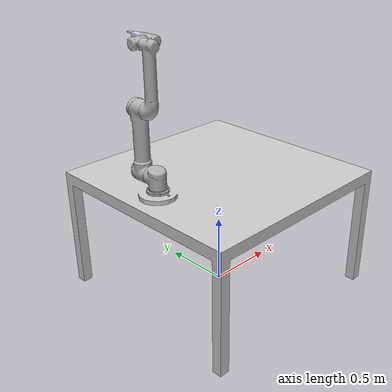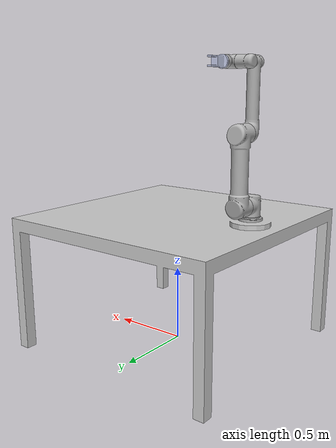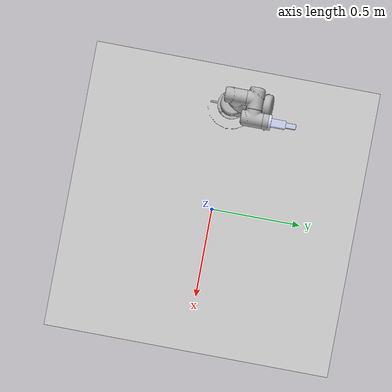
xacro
<?xml version="1.0"?>
<robot name="ur5" xmlns:xacro="http://www.ros.org/wiki/xacro">
  <!--Used to attach gripper to the UR5 robot -->
  <xacro:include filename="$(find ur_description)/urdf/ur5_joint_limited_robot.urdf.xacro" />
  <xacro:include filename="$(find gripper_ur5)/urdf/gripper.urdf.xacro" />
  <xacro:include filename="$(find cai_env)/urdf/table.urdf.xacro" />

  <joint name="table_ur5_joint" type="fixed">
    <origin xyz="-0.55 0.000 0.12" rpy="0 0 0" />
    <parent link="table"/>
    <child link="base_link"/>
  </joint>1

  <joint name="ur5_gripper_joint" type="fixed">
    <origin xyz="-0.030 0.052 0.007" rpy="0 0 0" />
    <parent link="tool0"/>
    <child link="gripper_body"/>
  </joint>

</robot>

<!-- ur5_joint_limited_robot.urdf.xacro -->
<robot xmlns:xacro="http://wiki.ros.org/xacro"
       name="ur5" >

  <xacro:arg name="transmission_hw_interface" default="hardware_interface/PositionJointInterface"/>

  <!-- common stuff -->
  <xacro:include filename="$(find ur_description)/urdf/common.gazebo.xacro" />

  <!-- ur5 -->
  <xacro:include filename="$(find ur_description)/urdf/ur5.urdf.xacro" />

  <!-- arm -->
  <xacro:ur5_robot prefix="" joint_limited="true"
    shoulder_pan_lower_limit="${-pi}" shoulder_pan_upper_limit="${pi}"
    shoulder_lift_lower_limit="${-pi}" shoulder_lift_upper_limit="${pi}"
    elbow_joint_lower_limit="${-pi}" elbow_joint_upper_limit="${pi}"
    wrist_1_lower_limit="${-pi}" wrist_1_upper_limit="${pi}"
    wrist_2_lower_limit="${-pi}" wrist_2_upper_limit="${pi}"
    wrist_3_lower_limit="${-pi}" wrist_3_upper_limit="${pi}"
    transmission_hw_interface="$(arg transmission_hw_interface)"
  />

</robot>

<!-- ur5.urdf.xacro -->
<robot xmlns:xacro="http://wiki.ros.org/xacro">

  <xacro:include filename="$(find ur_description)/urdf/ur.transmission.xacro" />
  <xacro:include filename="$(find ur_description)/urdf/ur.gazebo.xacro" />

  <xacro:macro name="cylinder_inertial" params="radius length mass *origin">
    <inertial>
      <mass value="${mass}" />
      <xacro:insert_block name="origin" />
      <inertia ixx="${0.0833333 * mass * (3 * radius * radius + length * length)}" ixy="0.0" ixz="0.0"
        iyy="${0.0833333 * mass * (3 * radius * radius + length * length)}" iyz="0.0"
        izz="${0.5 * mass * radius * radius}" />
    </inertial>
  </xacro:macro>

  <xacro:macro name="ur5_robot" params="prefix joint_limited
    shoulder_pan_lower_limit:=${-pi}    shoulder_pan_upper_limit:=${pi}
    shoulder_lift_lower_limit:=${-pi}    shoulder_lift_upper_limit:=${pi}
    elbow_joint_lower_limit:=${-pi}    elbow_joint_upper_limit:=${pi}
    wrist_1_lower_limit:=${-pi}    wrist_1_upper_limit:=${pi}
    wrist_2_lower_limit:=${-pi}    wrist_2_upper_limit:=${pi}
    wrist_3_lower_limit:=${-pi}    wrist_3_upper_limit:=${pi}
    transmission_hw_interface:=hardware_interface/PositionJointInterface">

    <!-- Inertia parameters -->
    <xacro:property name="base_mass" value="4.0" />  <!-- This mass might be incorrect -->
    <xacro:property name="shoulder_mass" value="3.7000" />
    <xacro:property name="upper_arm_mass" value="8.3930" />
    <xacro:property name="forearm_mass" value="2.2750" />
    <xacro:property name="wrist_1_mass" value="1.2190" />
    <xacro:property name="wrist_2_mass" value="1.2190" />
    <xacro:property name="wrist_3_mass" value="0.1879" />

    <xacro:property name="shoulder_cog" value="0.0 0.00193 -0.02561" />
    <xacro:property name="upper_arm_cog" value="0.0 -0.024201 0.2125" />
    <xacro:property name="forearm_cog" value="0.0 0.0265 0.11993" />
    <xacro:property name="wrist_1_cog" value="0.0 0.110949 0.01634" />
    <xacro:property name="wrist_2_cog" value="0.0 0.0018 0.11099" />
    <xacro:property name="wrist_3_cog" value="0.0 0.001159 0.0" />

    <!-- Kinematic model -->
    <!-- Properties from urcontrol.conf -->
    <xacro:property name="d1" value="0.089159" />
    <xacro:property name="a2" value="-0.42500" />
    <xacro:property name="a3" value="-0.39225" />
    <xacro:property name="d4" value="0.10915" />
    <xacro:property name="d5" value="0.09465" />
    <xacro:property name="d6" value="0.0823" />

    <!-- Arbitrary offsets for shoulder/elbow joints -->
    <xacro:property name="shoulder_offset" value="0.13585" />  <!-- measured from model -->
    <xacro:property name="elbow_offset" value="-0.1197" /> <!-- measured from model -->

    <!-- link lengths used in model -->
    <xacro:property name="shoulder_height" value="${d1}" />
    <xacro:property name="upper_arm_length" value="${-a2}" />
    <xacro:property name="forearm_length" value="${-a3}" />
    <xacro:property name="wrist_1_length" value="${d4 - elbow_offset - shoulder_offset}" />
    <xacro:property name="wrist_2_length" value="${d5}" />
    <xacro:property name="wrist_3_length" value="${d6}" />
    <!--property name="shoulder_height" value="0.089159" /-->
    <!--property name="shoulder_offset" value="0.13585" /-->  <!-- shoulder_offset - elbow_offset + wrist_1_length = 0.10915 -->
    <!--property name="upper_arm_length" value="0.42500" /-->
    <!--property name="elbow_offset" value="0.1197" /-->       <!-- CAD measured -->
    <!--property name="forearm_length" value="0.39225" /-->
    <!--property name="wrist_1_length" value="0.093" /-->     <!-- CAD measured -->
    <!--property name="wrist_2_length" value="0.09465" /-->   <!-- In CAD this distance is 0.930, but in the spec it is 0.09465 -->
    <!--property name="wrist_3_length" value="0.0823" /-->

    <xacro:property name="shoulder_radius" value="0.060" />   <!-- manually measured -->
    <xacro:property name="upper_arm_radius" value="0.054" />  <!-- manually measured -->
    <xacro:property name="elbow_radius" value="0.060" />      <!-- manually measured -->
    <xacro:property name="forearm_radius" value="0.040" />    <!-- manually measured -->
    <xacro:property name="wrist_radius" value="0.045" />      <!-- manually measured -->

    <link name="${prefix}base_link" >
      <visual>
        <geometry>
          <mesh filename="package://ur_description/meshes/ur5/visual/base.dae" />
        </geometry>
        <material name="LightGrey">
          <color rgba="0.7 0.7 0.7 1.0"/>
        </material>
      </visual>
      <collision>
        <geometry>
          <mesh filename="package://ur_description/meshes/ur5/collision/base.stl" />
        </geometry>
      </collision>
      <xacro:cylinder_inertial radius="0.06" length="0.05" mass="${base_mass}">
        <origin xyz="0.0 0.0 0.0" rpy="0 0 0" />
      </xacro:cylinder_inertial>
    </link>

    <joint name="${prefix}shoulder_pan_joint" type="revolute">
      <parent link="${prefix}base_link" />
      <child link = "${prefix}shoulder_link" />
      <origin xyz="0.0 0.0 ${shoulder_height}" rpy="0.0 0.0 0.0" />
      <axis xyz="0 0 1" />
      <xacro:unless value="${joint_limited}">
        <limit lower="${-2.0 * pi}" upper="${2.0 * pi}" effort="150.0" velocity="3.15"/>
      </xacro:unless>
      <xacro:if value="${joint_limited}">
        <limit lower="${shoulder_pan_lower_limit}" upper="${shoulder_pan_upper_limit}" effort="150.0" velocity="3.15"/>
      </xacro:if>
      <dynamics damping="0.0" friction="0.0"/>
    </joint>

    <link name="${prefix}shoulder_link">
      <visual>
        <geometry>
          <mesh filename="package://ur_description/meshes/ur5/visual/shoulder.dae" />
        </geometry>
        <material name="LightGrey">
          <color rgba="0.7 0.7 0.7 1.0"/>
        </material>
      </visual>
      <collision>
        <geometry>
          <mesh filename="package://ur_description/meshes/ur5/collision/shoulder.stl" />
        </geometry>
      </collision>
      <xacro:cylinder_inertial radius="0.06" length="0.15" mass="${shoulder_mass}">
        <origin xyz="0.0 0.0 0.0" rpy="0 0 0" />
      </xacro:cylinder_inertial>
    </link>

    <joint name="${prefix}shoulder_lift_joint" type="revolute">
      <parent link="${prefix}shoulder_link" />
      <child link = "${prefix}upper_arm_link" />
      <origin xyz="0.0 ${shoulder_offset} 0.0" rpy="0.0 0.0 0.0" />
      <axis xyz="0 1 0" />
      <xacro:unless value="${joint_limited}">
        <limit lower="${-2.0 * pi}" upper="${2.0 * pi}" effort="150.0" velocity="3.15"/>
      </xacro:unless>
      <xacro:if value="${joint_limited}">
        <limit lower="${shoulder_lift_lower_limit}" upper="${shoulder_lift_upper_limit}" effort="150.0" velocity="3.15"/>
      </xacro:if>
      <dynamics damping="0.0" friction="0.0"/>
    </joint>

    <link name="${prefix}upper_arm_link">
      <visual>
        <geometry>
          <mesh filename="package://ur_description/meshes/ur5/visual/upperarm.dae" />
        </geometry>
        <material name="LightGrey">
          <color rgba="0.7 0.7 0.7 1.0"/>
        </material>
      </visual>
      <collision>
        <geometry>
          <mesh filename="package://ur_description/meshes/ur5/collision/upperarm.stl" />
        </geometry>
      </collision>
      <xacro:cylinder_inertial radius="0.06" length="0.56" mass="${upper_arm_mass}">
        <origin xyz="0.0 0.0 0.28" rpy="0 0 0" />
      </xacro:cylinder_inertial>
    </link>

    <joint name="${prefix}elbow_joint" type="revolute">
      <parent link="${prefix}upper_arm_link" />
      <child link = "${prefix}forearm_link" />
      <origin xyz="0.0 ${elbow_offset} ${upper_arm_length}" rpy="0.0 0.0 0.0" />
      <axis xyz="0 1 0" />
      <xacro:unless value="${joint_limited}">
        <limit lower="${-pi}" upper="${pi}" effort="150.0" velocity="3.15"/>
      </xacro:unless>
      <xacro:if value="${joint_limited}">
        <limit lower="${elbow_joint_lower_limit}" upper="${elbow_joint_upper_limit}" effort="150.0" velocity="3.15"/>
      </xacro:if>
      <dynamics damping="0.0" friction="0.0"/>
    </joint>

    <link name="${prefix}forearm_link">
      <visual>
        <geometry>
          <mesh filename="package://ur_description/meshes/ur5/visual/forearm.dae" />
        </geometry>
        <material name="LightGrey">
          <color rgba="0.7 0.7 0.7 1.0"/>
        </material>
      </visual>
      <collision>
        <geometry>
          <mesh filename="package://ur_description/meshes/ur5/collision/forearm.stl" />
        </geometry>
      </collision>
      <xacro:cylinder_inertial radius="0.06" length="${-a3}" mass="${forearm_mass}">
        <origin xyz="0.0 0.0 ${-a3/2}" rpy="0 0 0" />
      </xacro:cylinder_inertial>
    </link>

    <joint name="${prefix}wrist_1_joint" type="revolute">
      <parent link="${prefix}forearm_link" />
      <child link = "${prefix}wrist_1_link" />
      <origin xyz="0.0 0.0 ${forearm_length}" rpy="0.0 ${pi / 2.0} 0.0" />
      <axis xyz="0 1 0" />
      <xacro:unless value="${joint_limited}">
        <limit lower="${-2.0 * pi}" upper="${2.0 * pi}" effort="28.0" velocity="3.2"/>
      </xacro:unless>
      <xacro:if value="${joint_limited}">
        <limit lower="${wrist_1_lower_limit}" upper="${wrist_1_upper_limit}" effort="28.0" velocity="3.2"/>
      </xacro:if>
      <dynamics damping="0.0" friction="0.0"/>
    </joint>

    <link name="${prefix}wrist_1_link">
      <visual>
        <geometry>
          <mesh filename="package://ur_description/meshes/ur5/visual/wrist1.dae" />
        </geometry>
        <material name="LightGrey">
          <color rgba="0.7 0.7 0.7 1.0"/>
        </material>
      </visual>
      <collision>
        <geometry>
          <mesh filename="package://ur_description/meshes/ur5/collision/wrist1.stl" />
        </geometry>
      </collision>
      <xacro:cylinder_inertial radius="0.06" length="0.12" mass="${wrist_1_mass}">
        <origin xyz="0.0 ${wrist_1_length} 0.0" rpy="0 0 0" />
      </xacro:cylinder_inertial>
    </link>

    <joint name="${prefix}wrist_2_joint" type="revolute">
      <parent link="${prefix}wrist_1_link" />
      <child link = "${prefix}wrist_2_link" />
      <origin xyz="0.0 ${wrist_1_length} 0.0" rpy="0.0 0.0 0.0" />
      <axis xyz="0 0 1" />
      <xacro:unless value="${joint_limited}">
        <limit lower="${-2.0 * pi}" upper="${2.0 * pi}" effort="28.0" velocity="3.2"/>
      </xacro:unless>
      <xacro:if value="${joint_limited}">
        <limit lower="${wrist_2_lower_limit}" upper="${wrist_2_upper_limit}" effort="28.0" velocity="3.2"/>
      </xacro:if>
      <dynamics damping="0.0" friction="0.0"/>
    </joint>

    <link name="${prefix}wrist_2_link">
      <visual>
        <geometry>
          <mesh filename="package://ur_description/meshes/ur5/visual/wrist2.dae" />
        </geometry>
        <material name="LightGrey">
          <color rgba="0.7 0.7 0.7 1.0"/>
        </material>
      </visual>
      <collision>
        <geometry>
          <mesh filename="package://ur_description/meshes/ur5/collision/wrist2.stl" />
        </geometry>
      </collision>
      <xacro:cylinder_inertial radius="0.06" length="0.12" mass="${wrist_2_mass}">
        <origin xyz="0.0 0.0 ${wrist_2_length}" rpy="0 0 0" />
      </xacro:cylinder_inertial>
    </link>

    <joint name="${prefix}wrist_3_joint" type="revolute">
      <parent link="${prefix}wrist_2_link" />
      <child link = "${prefix}wrist_3_link" />
      <origin xyz="0.0 0.0 ${wrist_2_length}" rpy="0.0 0.0 0.0" />
      <axis xyz="0 1 0" />
      <xacro:unless value="${joint_limited}">
        <limit lower="${-2.0 * pi}" upper="${2.0 * pi}" effort="28.0" velocity="3.2"/>
      </xacro:unless>
      <xacro:if value="${joint_limited}">
        <limit lower="${wrist_3_lower_limit}" upper="${wrist_3_upper_limit}" effort="28.0" velocity="3.2"/>
      </xacro:if>
      <dynamics damping="0.0" friction="0.0"/>
    </joint>

    <link name="${prefix}wrist_3_link">
      <visual>
        <geometry>
          <mesh filename="package://ur_description/meshes/ur5/visual/wrist3.dae" />
        </geometry>
        <material name="LightGrey">
          <color rgba="0.7 0.7 0.7 1.0"/>
        </material>
      </visual>
      <collision>
        <geometry>
          <mesh filename="package://ur_description/meshes/ur5/collision/wrist3.stl" />
        </geometry>
      </collision>
      <xacro:cylinder_inertial radius="0.0375" length="0.0345" mass="${wrist_3_mass}">
        <origin xyz="0.0 ${wrist_3_length - 0.0345/2} 0.0" rpy="${pi/2} 0 0" />
      </xacro:cylinder_inertial>
    </link>

    <joint name="${prefix}ee_fixed_joint" type="fixed">
      <parent link="${prefix}wrist_3_link" />
      <child link = "${prefix}ee_link" />
      <origin xyz="0.0 ${wrist_3_length} 0.0" rpy="0.0 0.0 ${pi/2.0}" />
    </joint>

    <link name="${prefix}ee_link">
      <collision>
        <geometry>
          <box size="0.01 0.01 0.01"/>
        </geometry>
        <origin rpy="0 0 0" xyz="-0.01 0 0"/>
      </collision>
    </link>

    <xacro:ur_arm_transmission prefix="${prefix}" hw_interface="${transmission_hw_interface}" />
    <xacro:ur_arm_gazebo prefix="${prefix}" />

    <!-- ROS base_link to UR 'Base' Coordinates transform -->
    <link name="${prefix}base"/>
    <joint name="${prefix}base_link-base_fixed_joint" type="fixed">
      <!-- NOTE: this rotation is only needed as long as base_link itself is
                 not corrected wrt the real robot (ie: rotated over 180
                 degrees)
      -->
      <origin xyz="0 0 0" rpy="0 0 ${-pi}"/>
      <parent link="${prefix}base_link"/>
      <child link="${prefix}base"/>
    </joint>

    <!-- Frame coincident with all-zeros TCP on UR controller -->
    <link name="${prefix}tool0"/>
    <joint name="${prefix}wrist_3_link-tool0_fixed_joint" type="fixed">
      <origin xyz="0 ${wrist_3_length} 0" rpy="${pi/-2.0} 0 0"/>
      <parent link="${prefix}wrist_3_link"/>
      <child link="${prefix}tool0"/>
    </joint>

  </xacro:macro>
</robot>

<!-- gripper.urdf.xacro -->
<robot name="gripper" xmlns:xacro="http://www.ros.org/wiki/xacro">
  <link name="gripper_body">
    <inertial>
      <origin xyz="0.030743 -0.052447 0.02264" rpy="0 0 0" />
      <mass value="1.23381" />
      <inertia
        ixx="0.00020083"
        ixy="3.1979E-11"
        ixz="-1.5744E-22"
        iyy="0.00022836"
        iyz="-7.5039E-21"
        izz="0.00011851" />
    </inertial>
    <visual>
      <origin
        xyz="0 0 0"
        rpy="0 0 0" />
      <geometry>
        <mesh
          filename="package://gripper_ur5/meshes/gripper_body.STL" />
      </geometry>
      <material
        name="">
        <color
          rgba="0.79216 0.81961 0.93333 1" />
      </material>
    </visual>
    <collision>
      <origin
        xyz="0 0 0"
        rpy="0 0 0" />
      <geometry>
        <mesh
          filename="package://gripper_ur5/meshes/gripper_body.STL" />
      </geometry>
    </collision>
  </link>
  <link
    name="finger_link1">
    <inertial>
      <origin
        xyz="-0.0055776 0.024687 9.7594E-11"
        rpy="0 0 0" />
      <mass
        value="0.41464" />
      <inertia
        ixx="3.0086E-06"
        ixy="6.4834E-09"
        ixz="3.2794E-13"
        iyy="6.6619E-07"
        iyz="2.6183E-13"
        izz="2.5138E-06" />
    </inertial>
    <visual>
      <origin
        xyz="0 0 0"
        rpy="0 0 0" />
      <geometry>
        <mesh
          filename="package://gripper_ur5/meshes/finger_link1.STL" />
      </geometry>
      <material
        name="">
        <color
          rgba="0.79216 0.81961 0.93333 1" />
      </material>
    </visual>
    <collision>
      <origin
        xyz="0 0 0"
        rpy="0 0 0" />
      <geometry>
        <mesh
          filename="package://gripper_ur5/meshes/finger_link1.STL" />
      </geometry>
    </collision>
  </link>
  <joint
    name="finger_joint1"
    type="prismatic">
    <origin
      xyz="0.050359 -0.052447 0.069837"
      rpy="1.5708 0 3.1416" />
    <parent
      link="gripper_body" />
    <child
      link="finger_link1" />
    <axis
      xyz="1 0 0" />
    <limit effort="100" lower="0.00" upper="0.02" velocity="0.1" />
    <dynamics damping="0.7"/>
  </joint>
  <link
    name="finger_link2">
    <inertial>
      <origin xyz="0.0051896 0.024687 9.7594E-11"
        rpy="0 0 0" />
      <mass
        value="0.41464" />
      <inertia
        ixx="3.0086E-06"
        ixy="6.4834E-09"
        ixz="3.2794E-13"
        iyy="6.6619E-07"
        iyz="2.6183E-13"
        izz="2.5138E-06" />
    </inertial>
    <visual>
      <origin
        xyz="0 0 0"
        rpy="0 0 0" />
      <geometry>
        <mesh
          filename="package://gripper_ur5/meshes/finger_link2.STL" />
      </geometry>
      <material
        name="">
        <color
          rgba="0.79216 0.81961 0.93333 1" />
      </material>
    </visual>
    <collision>
      <origin
        xyz="0 0 0"
        rpy="0 0 0" />
      <geometry>
        <mesh
          filename="package://gripper_ur5/meshes/finger_link2.STL" />
      </geometry>
    </collision>
  </link>
  <joint
    name="finger_joint2"
    type="prismatic">
    <origin
      xyz="0.00035895 -0.052447 0.069837"
      rpy="1.5708 0 0" />
    <parent
      link="gripper_body" />
    <child
      link="finger_link2" />
    <axis
      xyz="1 0 0" />
    <limit effort="100" lower="0.00" upper="0.02" velocity="0.1" />
    <dynamics damping="0.7"/>
  </joint>

  <gazebo reference="finger_link2">
    <kp>1000000.0</kp>
    <kd>100.0</kd>
    <mu1>1.0</mu1>
    <mu2>1.0</mu2>
    <maxVel>0</maxVel>
    <minDepth>0.1</minDepth>
  </gazebo>

  <gazebo reference="finger_link1">
    <kp>1000000.0</kp>
    <kd>100.0</kd>
    <mu1>1.0</mu1>
    <mu2>1.0</mu2>
    <maxVel>0</maxVel>
    <minDepth>0.1</minDepth>
  </gazebo>

    <transmission name="finger1_trans">
        <type>transmission_interface/SimpleTransmission</type>
        <joint name="finger_joint1">
        <hardwareInterface>hardware_interface/EffortJointInterface</hardwareInterface>
        </joint>
        <actuator name="motor1">
        <hardwareInterface>hardware_interface/EffortJointInterface</hardwareInterface>
        <mechanicalReduction>1</mechanicalReduction>
        </actuator>
    </transmission>

    <transmission name="finger2_trans">
        <type>transmission_interface/SimpleTransmission</type>
        <joint name="finger_joint2">
        <hardwareInterface>hardware_interface/EffortJointInterface</hardwareInterface>
        </joint>
        <actuator name="motor2">
        <hardwareInterface>hardware_interface/EffortJointInterface</hardwareInterface>
        <mechanicalReduction>1</mechanicalReduction>
        </actuator>
    </transmission>

  <gazebo reference="gripper_body">
   <material>Gazebo/DarkGrey</material>
  </gazebo>
  <gazebo reference="finger_link1">
   <material>Gazebo/DarkGrey</material>
  </gazebo>
  <gazebo reference="finger_link2">
   <material>Gazebo/DarkGrey</material>
  </gazebo>

</robot>

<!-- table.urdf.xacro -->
<robot name="table" xmlns:xacro="http://www.ros.org/wiki/xacro">

  <link name="world" />

  <joint name="table_fix_joint" type="fixed">
    <origin xyz = "0 0 0.8" rpy="0 0 0 "/>
    <parent link = "world"/>
    <child link = "table"/>
  </joint>

  <link name="table">
    <inertial>
      <origin
        xyz="-0.0041082 1.07711660138806E-16 0.0054166"
        rpy="0 0 0" />
      <mass
        value="197.15" />
      <inertia
        ixx="45.515"
        ixy="1.87435573118393E-14"
        ixz="0.072557"
        iyy="45.957"
        iyz="6.98966251528785E-15"
        izz="83.998" />
    </inertial>
    <visual>
      <origin
        xyz="0 0 0"
        rpy="1.5707963267949 0 0" />
      <geometry>
        <mesh
          filename="package://cai_env/meshes/table.dae" />
      </geometry>

    </visual>
    <collision>
      <origin
        xyz="0 0 0"
        rpy="1.5707963267949 0 0" />
      <geometry>
        <mesh
          filename="package://cai_env/meshes/table.dae" />
      </geometry>
    </collision>
  </link>
</robot>
